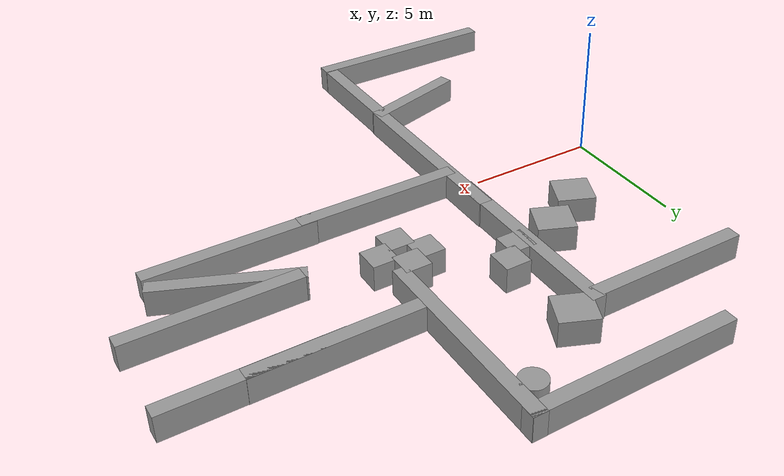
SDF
<sdf version="1.6">
 <model name="Maze01">
  <link name="link_10">
   <pose>9.80009 2.02423 9e-06 0 -0 0</pose>
   <inertial>
    <mass>1</mass>
    <inertia>
     <ixx>0.166667</ixx>
     <ixy>0</ixy>
     <ixz>0</ixz>
     <iyy>0.166667</iyy>
     <iyz>0</iyz>
     <izz>0.166667</izz>
    </inertia>
   </inertial>
   <visual name="visual">
    <geometry><box><size>1 1 1</size></box></geometry>
    <material>
     <lighting>1</lighting>
     <script><uri>file://media/materials/scripts/gazebo.material</uri><name>Gazebo/Grey</name></script>
     <ambient>0.3 0.3 0.3 1</ambient>
     <diffuse>0.7 0.7 0.7 1</diffuse>
     <specular>0.01 0.01 0.01 1</specular>
     <emissive>0 0 0 1</emissive>
    </material>
   </visual>
   <collision name="collision">
    <geometry><box><size>1 1 1</size></box></geometry>
    <surface>
     <friction>
      <ode><mu>1</mu><mu2>1</mu2><fdir1>0 0 0</fdir1><slip1>0</slip1><slip2>0</slip2></ode>
      <torsional>
       <coefficient>1</coefficient>
       <patch_radius>0</patch_radius>
       <surface_radius>0</surface_radius>
       <use_patch_radius>1</use_patch_radius>
       <ode><slip>0</slip></ode>
      </torsional>
     </friction>
     <bounce><restitution_coefficient>0</restitution_coefficient><threshold>1e+06</threshold></bounce>
     <contact>
      <collide_without_contact>0</collide_without_contact>
      <collide_without_contact_bitmask>1</collide_without_contact_bitmask>
      <collide_bitmask>1</collide_bitmask>
      <ode>
       <soft_cfm>0</soft_cfm>
       <soft_erp>0.2</soft_erp>
       <kp>1e+13</kp>
       <kd>1</kd>
       <max_vel>0.01</max_vel>
       <min_depth>0</min_depth>
      </ode>
      <bullet>
       <split_impulse>1</split_impulse>
       <split_impulse_penetration_threshold>-0.01</split_impulse_penetration_threshold>
       <soft_cfm>0</soft_cfm>
       <soft_erp>0.2</soft_erp>
       <kp>1e+13</kp>
       <kd>1</kd>
      </bullet>
     </contact>
    </surface>
   </collision>
  </link>
  <link name="link_11">
   <pose>6.31823 4.34711 9e-06 0 -0 0</pose>
   <inertial>
    <mass>1</mass>
    <inertia>
     <ixx>0.166667</ixx>
     <ixy>0</ixy>
     <ixz>0</ixz>
     <iyy>0.166667</iyy>
     <iyz>0</iyz>
     <izz>0.166667</izz>
    </inertia>
   </inertial>
   <visual name="visual">
    <geometry><box><size>1 1 1</size></box></geometry>
    <material>
     <lighting>1</lighting>
     <script><uri>file://media/materials/scripts/gazebo.material</uri><name>Gazebo/Grey</name></script>
     <ambient>0.3 0.3 0.3 1</ambient>
     <diffuse>0.7 0.7 0.7 1</diffuse>
     <specular>0.01 0.01 0.01 1</specular>
     <emissive>0 0 0 1</emissive>
    </material>
   </visual>
   <collision name="collision">
    <geometry><box><size>1 1 1</size></box></geometry>
    <surface>
     <friction>
      <ode><mu>1</mu><mu2>1</mu2><fdir1>0 0 0</fdir1><slip1>0</slip1><slip2>0</slip2></ode>
      <torsional>
       <coefficient>1</coefficient>
       <patch_radius>0</patch_radius>
       <surface_radius>0</surface_radius>
       <use_patch_radius>1</use_patch_radius>
       <ode><slip>0</slip></ode>
      </torsional>
     </friction>
     <bounce><restitution_coefficient>0</restitution_coefficient><threshold>1e+06</threshold></bounce>
     <contact>
      <collide_without_contact>0</collide_without_contact>
      <collide_without_contact_bitmask>1</collide_without_contact_bitmask>
      <collide_bitmask>1</collide_bitmask>
      <ode>
       <soft_cfm>0</soft_cfm>
       <soft_erp>0.2</soft_erp>
       <kp>1e+13</kp>
       <kd>1</kd>
       <max_vel>0.01</max_vel>
       <min_depth>0</min_depth>
      </ode>
      <bullet>
       <split_impulse>1</split_impulse>
       <split_impulse_penetration_threshold>-0.01</split_impulse_penetration_threshold>
       <soft_cfm>0</soft_cfm>
       <soft_erp>0.2</soft_erp>
       <kp>1e+13</kp>
       <kd>1</kd>
      </bullet>
     </contact>
    </surface>
   </collision>
  </link>
  <link name="link_12">
   <pose>7.00494 5.00129 9e-06 0 -0 0</pose>
   <inertial>
    <mass>1</mass>
    <inertia>
     <ixx>0.166667</ixx>
     <ixy>0</ixy>
     <ixz>0</ixz>
     <iyy>0.166667</iyy>
     <iyz>0</iyz>
     <izz>0.166667</izz>
    </inertia>
   </inertial>
   <visual name="visual">
    <geometry><box><size>1 1 1</size></box></geometry>
    <material>
     <lighting>1</lighting>
     <script><uri>file://media/materials/scripts/gazebo.material</uri><name>Gazebo/Grey</name></script>
     <ambient>0.3 0.3 0.3 1</ambient>
     <diffuse>0.7 0.7 0.7 1</diffuse>
     <specular>0.01 0.01 0.01 1</specular>
     <emissive>0 0 0 1</emissive>
    </material>
   </visual>
   <collision name="collision">
    <geometry><box><size>1 1 1</size></box></geometry>
    <surface>
     <friction>
      <ode><mu>1</mu><mu2>1</mu2><fdir1>0 0 0</fdir1><slip1>0</slip1><slip2>0</slip2></ode>
      <torsional>
       <coefficient>1</coefficient>
       <patch_radius>0</patch_radius>
       <surface_radius>0</surface_radius>
       <use_patch_radius>1</use_patch_radius>
       <ode><slip>0</slip></ode>
      </torsional>
     </friction>
     <bounce><restitution_coefficient>0</restitution_coefficient><threshold>1e+06</threshold></bounce>
     <contact>
      <collide_without_contact>0</collide_without_contact>
      <collide_without_contact_bitmask>1</collide_without_contact_bitmask>
      <collide_bitmask>1</collide_bitmask>
      <ode>
       <soft_cfm>0</soft_cfm>
       <soft_erp>0.2</soft_erp>
       <kp>1e+13</kp>
       <kd>1</kd>
       <max_vel>0.01</max_vel>
       <min_depth>0</min_depth>
      </ode>
      <bullet>
       <split_impulse>1</split_impulse>
       <split_impulse_penetration_threshold>-0.01</split_impulse_penetration_threshold>
       <soft_cfm>0</soft_cfm>
       <soft_erp>0.2</soft_erp>
       <kp>1e+13</kp>
       <kd>1</kd>
      </bullet>
     </contact>
    </surface>
   </collision>
  </link>
  <link name="link_14">
   <pose>10.7124 2.54643 9e-06 0 -0 0</pose>
   <inertial>
    <mass>1</mass>
    <inertia>
     <ixx>0.166667</ixx>
     <ixy>0</ixy>
     <ixz>0</ixz>
     <iyy>0.166667</iyy>
     <iyz>0</iyz>
     <izz>0.166667</izz>
    </inertia>
   </inertial>
   <visual name="visual">
    <geometry><box><size>1 1 1</size></box></geometry>
    <material>
     <lighting>1</lighting>
     <script><uri>file://media/materials/scripts/gazebo.material</uri><name>Gazebo/Grey</name></script>
     <ambient>0.3 0.3 0.3 1</ambient>
     <diffuse>0.7 0.7 0.7 1</diffuse>
     <specular>0.01 0.01 0.01 1</specular>
     <emissive>0 0 0 1</emissive>
    </material>
   </visual>
   <collision name="collision">
    <geometry><box><size>1 1 1</size></box></geometry>
    <surface>
     <friction>
      <ode><mu>1</mu><mu2>1</mu2><fdir1>0 0 0</fdir1><slip1>0</slip1><slip2>0</slip2></ode>
      <torsional>
       <coefficient>1</coefficient>
       <patch_radius>0</patch_radius>
       <surface_radius>0</surface_radius>
       <use_patch_radius>1</use_patch_radius>
       <ode><slip>0</slip></ode>
      </torsional>
     </friction>
     <bounce><restitution_coefficient>0</restitution_coefficient><threshold>1e+06</threshold></bounce>
     <contact>
      <collide_without_contact>0</collide_without_contact>
      <collide_without_contact_bitmask>1</collide_without_contact_bitmask>
      <collide_bitmask>1</collide_bitmask>
      <ode>
       <soft_cfm>0</soft_cfm>
       <soft_erp>0.2</soft_erp>
       <kp>1e+13</kp>
       <kd>1</kd>
       <max_vel>0.01</max_vel>
       <min_depth>0</min_depth>
      </ode>
      <bullet>
       <split_impulse>1</split_impulse>
       <split_impulse_penetration_threshold>-0.01</split_impulse_penetration_threshold>
       <soft_cfm>0</soft_cfm>
       <soft_erp>0.2</soft_erp>
       <kp>1e+13</kp>
       <kd>1</kd>
      </bullet>
     </contact>
    </surface>
   </collision>
  </link>
  <link name="link_4_clone_0_clone_clone_1_clone_0_clone">
   <pose>2.19804 -10.643 9e-06 0 -0 0</pose>
   <inertial>
    <mass>4.30693</mass>
    <inertia><ixx>0.46587</ixx><ixy>0</ixy><ixz>0</ixz><iyy>22.6991</iyy><iyz>0</iyz><izz>22.4471</izz></inertia>
   </inertial>
   <visual name="visual">
    <geometry><box><size>7.88951 0.545905 1</size></box></geometry>
    <material>
     <lighting>1</lighting>
     <script><uri>file://media/materials/scripts/gazebo.material</uri><name>Gazebo/Grey</name></script>
     <ambient>0.3 0.3 0.3 1</ambient>
     <diffuse>0.7 0.7 0.7 1</diffuse>
     <specular>0.01 0.01 0.01 1</specular>
     <emissive>0 0 0 1</emissive>
     <shader type="pixel"/>
    </material>
   </visual>
   <collision name="collision">
    <geometry><box><size>7.88951 0.545905 1</size></box></geometry>
    <surface>
     <friction>
      <ode><mu>1</mu><mu2>1</mu2><fdir1>0 0 0</fdir1><slip1>0</slip1><slip2>0</slip2></ode>
      <torsional>
       <coefficient>1</coefficient>
       <patch_radius>0</patch_radius>
       <surface_radius>0</surface_radius>
       <use_patch_radius>1</use_patch_radius>
       <ode><slip>0</slip></ode>
      </torsional>
     </friction>
     <bounce><restitution_coefficient>0</restitution_coefficient><threshold>1e+06</threshold></bounce>
     <contact>
      <collide_without_contact>0</collide_without_contact>
      <collide_without_contact_bitmask>1</collide_without_contact_bitmask>
      <collide_bitmask>1</collide_bitmask>
      <ode>
       <soft_cfm>0</soft_cfm>
       <soft_erp>0.2</soft_erp>
       <kp>1e+13</kp>
       <kd>1</kd>
       <max_vel>0.01</max_vel>
       <min_depth>0</min_depth>
      </ode>
      <bullet>
       <split_impulse>1</split_impulse>
       <split_impulse_penetration_threshold>-0.01</split_impulse_penetration_threshold>
       <soft_cfm>0</soft_cfm>
       <soft_erp>0.2</soft_erp>
       <kp>1e+13</kp>
       <kd>1</kd>
      </bullet>
     </contact>
    </surface>
   </collision>
  </link>
  <link name="link_4_clone_0_clone_clone_1_clone_0_clone_0_clone">
   <pose>6.79233 11.1081 9e-06 0 -0 0</pose>
   <inertial>
    <mass>4.30693</mass>
    <inertia><ixx>0.46587</ixx><ixy>0</ixy><ixz>0</ixz><iyy>22.6991</iyy><iyz>0</iyz><izz>22.4471</izz></inertia>
   </inertial>
   <visual name="visual">
    <geometry><box><size>7.88951 0.545905 1</size></box></geometry>
    <material>
     <lighting>1</lighting>
     <script><uri>file://media/materials/scripts/gazebo.material</uri><name>Gazebo/Grey</name></script>
     <ambient>0.3 0.3 0.3 1</ambient>
     <diffuse>0.7 0.7 0.7 1</diffuse>
     <specular>0.01 0.01 0.01 1</specular>
     <emissive>0 0 0 1</emissive>
     <shader type="pixel"/>
    </material>
   </visual>
   <collision name="collision">
    <geometry><box><size>7.88951 0.545905 1</size></box></geometry>
    <surface>
     <friction>
      <ode><mu>1</mu><mu2>1</mu2><fdir1>0 0 0</fdir1><slip1>0</slip1><slip2>0</slip2></ode>
      <torsional>
       <coefficient>1</coefficient>
       <patch_radius>0</patch_radius>
       <surface_radius>0</surface_radius>
       <use_patch_radius>1</use_patch_radius>
       <ode><slip>0</slip></ode>
      </torsional>
     </friction>
     <bounce><restitution_coefficient>0</restitution_coefficient><threshold>1e+06</threshold></bounce>
     <contact>
      <collide_without_contact>0</collide_without_contact>
      <collide_without_contact_bitmask>1</collide_without_contact_bitmask>
      <collide_bitmask>1</collide_bitmask>
      <ode>
       <soft_cfm>0</soft_cfm>
       <soft_erp>0.2</soft_erp>
       <kp>1e+13</kp>
       <kd>1</kd>
       <max_vel>0.01</max_vel>
       <min_depth>0</min_depth>
      </ode>
      <bullet>
       <split_impulse>1</split_impulse>
       <split_impulse_penetration_threshold>-0.01</split_impulse_penetration_threshold>
       <soft_cfm>0</soft_cfm>
       <soft_erp>0.2</soft_erp>
       <kp>1e+13</kp>
       <kd>1</kd>
      </bullet>
     </contact>
    </surface>
   </collision>
  </link>
  <link name="link_4_clone_0_clone_clone_1_clone_clone">
   <pose>2.76705 7.92871 9e-06 0 -0 0</pose>
   <inertial>
    <mass>3.50538</mass>
    <inertia><ixx>0.379168</ixx><ixy>0</ixy><ixz>0</ixz><iyy>12.3366</iyy><iyz>0</iyz><izz>12.1315</izz></inertia>
   </inertial>
   <visual name="visual">
    <geometry><box><size>6.42122 0.545905 1</size></box></geometry>
    <material>
     <lighting>1</lighting>
     <script><uri>file://media/materials/scripts/gazebo.material</uri><name>Gazebo/Grey</name></script>
     <ambient>0.3 0.3 0.3 1</ambient>
     <diffuse>0.7 0.7 0.7 1</diffuse>
     <specular>0.01 0.01 0.01 1</specular>
     <emissive>0 0 0 1</emissive>
     <shader type="pixel"/>
    </material>
   </visual>
   <collision name="collision">
    <geometry><box><size>6.42122 0.545905 1</size></box></geometry>
    <surface>
     <friction>
      <ode><mu>1</mu><mu2>1</mu2><fdir1>0 0 0</fdir1><slip1>0</slip1><slip2>0</slip2></ode>
      <torsional>
       <coefficient>1</coefficient>
       <patch_radius>0</patch_radius>
       <surface_radius>0</surface_radius>
       <use_patch_radius>1</use_patch_radius>
       <ode><slip>0</slip></ode>
      </torsional>
     </friction>
     <bounce><restitution_coefficient>0</restitution_coefficient><threshold>1e+06</threshold></bounce>
     <contact>
      <collide_without_contact>0</collide_without_contact>
      <collide_without_contact_bitmask>1</collide_without_contact_bitmask>
      <collide_bitmask>1</collide_bitmask>
      <ode>
       <soft_cfm>0</soft_cfm>
       <soft_erp>0.2</soft_erp>
       <kp>1e+13</kp>
       <kd>1</kd>
       <max_vel>0.01</max_vel>
       <min_depth>0</min_depth>
      </ode>
      <bullet>
       <split_impulse>1</split_impulse>
       <split_impulse_penetration_threshold>-0.01</split_impulse_penetration_threshold>
       <soft_cfm>0</soft_cfm>
       <soft_erp>0.2</soft_erp>
       <kp>1e+13</kp>
       <kd>1</kd>
      </bullet>
     </contact>
    </surface>
   </collision>
  </link>
  <link name="link_4_clone_0_clone_clone_1_clone_clone_0">
   <pose>8.96944 -0.687018 9e-06 0 -0 0</pose>
   <inertial>
    <mass>3.50538</mass>
    <inertia><ixx>0.379168</ixx><ixy>0</ixy><ixz>0</ixz><iyy>12.3366</iyy><iyz>0</iyz><izz>12.1315</izz></inertia>
   </inertial>
   <visual name="visual">
    <geometry><box><size>6.42122 0.545905 1</size></box></geometry>
    <material>
     <lighting>1</lighting>
     <script><uri>file://media/materials/scripts/gazebo.material</uri><name>Gazebo/Grey</name></script>
     <ambient>0.3 0.3 0.3 1</ambient>
     <diffuse>0.7 0.7 0.7 1</diffuse>
     <specular>0.01 0.01 0.01 1</specular>
     <emissive>0 0 0 1</emissive>
     <shader type="pixel"/>
    </material>
   </visual>
   <collision name="collision">
    <geometry><box><size>6.42122 0.545905 1</size></box></geometry>
    <surface>
     <friction>
      <ode><mu>1</mu><mu2>1</mu2><fdir1>0 0 0</fdir1><slip1>0</slip1><slip2>0</slip2></ode>
      <torsional>
       <coefficient>1</coefficient>
       <patch_radius>0</patch_radius>
       <surface_radius>0</surface_radius>
       <use_patch_radius>1</use_patch_radius>
       <ode><slip>0</slip></ode>
      </torsional>
     </friction>
     <bounce><restitution_coefficient>0</restitution_coefficient><threshold>1e+06</threshold></bounce>
     <contact>
      <collide_without_contact>0</collide_without_contact>
      <collide_without_contact_bitmask>1</collide_without_contact_bitmask>
      <collide_bitmask>1</collide_bitmask>
      <ode>
       <soft_cfm>0</soft_cfm>
       <soft_erp>0.2</soft_erp>
       <kp>1e+13</kp>
       <kd>1</kd>
       <max_vel>0.01</max_vel>
       <min_depth>0</min_depth>
      </ode>
      <bullet>
       <split_impulse>1</split_impulse>
       <split_impulse_penetration_threshold>-0.01</split_impulse_penetration_threshold>
       <soft_cfm>0</soft_cfm>
       <soft_erp>0.2</soft_erp>
       <kp>1e+13</kp>
       <kd>1</kd>
      </bullet>
     </contact>
    </surface>
   </collision>
  </link>
  <link name="link_4_clone_0_clone_clone_1_clone_clone_0_clone">
   <pose>13.7042 5.43273 9e-06 0 -0 0</pose>
   <inertial>
    <mass>3.50538</mass>
    <inertia><ixx>0.379168</ixx><ixy>0</ixy><ixz>0</ixz><iyy>12.3366</iyy><iyz>0</iyz><izz>12.1315</izz></inertia>
   </inertial>
   <visual name="visual">
    <geometry><box><size>6.42122 0.545905 1</size></box></geometry>
    <material>
     <lighting>1</lighting>
     <script><uri>file://media/materials/scripts/gazebo.material</uri><name>Gazebo/Grey</name></script>
     <ambient>0.3 0.3 0.3 1</ambient>
     <diffuse>0.7 0.7 0.7 1</diffuse>
     <specular>0.01 0.01 0.01 1</specular>
     <emissive>0 0 0 1</emissive>
     <shader type="pixel"/>
    </material>
   </visual>
   <collision name="collision">
    <geometry><box><size>6.42122 0.545905 1</size></box></geometry>
    <surface>
     <friction>
      <ode><mu>1</mu><mu2>1</mu2><fdir1>0 0 0</fdir1><slip1>0</slip1><slip2>0</slip2></ode>
      <torsional>
       <coefficient>1</coefficient>
       <patch_radius>0</patch_radius>
       <surface_radius>0</surface_radius>
       <use_patch_radius>1</use_patch_radius>
       <ode><slip>0</slip></ode>
      </torsional>
     </friction>
     <bounce><restitution_coefficient>0</restitution_coefficient><threshold>1e+06</threshold></bounce>
     <contact>
      <collide_without_contact>0</collide_without_contact>
      <collide_without_contact_bitmask>1</collide_without_contact_bitmask>
      <collide_bitmask>1</collide_bitmask>
      <ode>
       <soft_cfm>0</soft_cfm>
       <soft_erp>0.2</soft_erp>
       <kp>1e+13</kp>
       <kd>1</kd>
       <max_vel>0.01</max_vel>
       <min_depth>0</min_depth>
      </ode>
      <bullet>
       <split_impulse>1</split_impulse>
       <split_impulse_penetration_threshold>-0.01</split_impulse_penetration_threshold>
       <soft_cfm>0</soft_cfm>
       <soft_erp>0.2</soft_erp>
       <kp>1e+13</kp>
       <kd>1</kd>
      </bullet>
     </contact>
    </surface>
   </collision>
  </link>
  <link name="link_4_clone_0_clone_clone_1_clone_clone_0_clone_0">
   <pose>16.5218 2.00661 9e-06 0 -0 0</pose>
   <inertial>
    <mass>3.50538</mass>
    <inertia><ixx>0.379168</ixx><ixy>0</ixy><ixz>0</ixz><iyy>12.3366</iyy><iyz>0</iyz><izz>12.1315</izz></inertia>
   </inertial>
   <visual name="visual">
    <geometry><box><size>6.42122 0.545905 1</size></box></geometry>
    <material>
     <lighting>1</lighting>
     <script><uri>file://media/materials/scripts/gazebo.material</uri><name>Gazebo/Grey</name></script>
     <ambient>0.3 0.3 0.3 1</ambient>
     <diffuse>0.7 0.7 0.7 1</diffuse>
     <specular>0.01 0.01 0.01 1</specular>
     <emissive>0 0 0 1</emissive>
     <shader type="pixel"/>
    </material>
   </visual>
   <collision name="collision">
    <geometry><box><size>6.42122 0.545905 1</size></box></geometry>
    <surface>
     <friction>
      <ode><mu>1</mu><mu2>1</mu2><fdir1>0 0 0</fdir1><slip1>0</slip1><slip2>0</slip2></ode>
      <torsional>
       <coefficient>1</coefficient>
       <patch_radius>0</patch_radius>
       <surface_radius>0</surface_radius>
       <use_patch_radius>1</use_patch_radius>
       <ode><slip>0</slip></ode>
      </torsional>
     </friction>
     <bounce><restitution_coefficient>0</restitution_coefficient><threshold>1e+06</threshold></bounce>
     <contact>
      <collide_without_contact>0</collide_without_contact>
      <collide_without_contact_bitmask>1</collide_without_contact_bitmask>
      <collide_bitmask>1</collide_bitmask>
      <ode>
       <soft_cfm>0</soft_cfm>
       <soft_erp>0.2</soft_erp>
       <kp>1e+13</kp>
       <kd>1</kd>
       <max_vel>0.01</max_vel>
       <min_depth>0</min_depth>
      </ode>
      <bullet>
       <split_impulse>1</split_impulse>
       <split_impulse_penetration_threshold>-0.01</split_impulse_penetration_threshold>
       <soft_cfm>0</soft_cfm>
       <soft_erp>0.2</soft_erp>
       <kp>1e+13</kp>
       <kd>1</kd>
      </bullet>
     </contact>
    </surface>
   </collision>
  </link>
  <link name="link_4_clone_0_clone_clone_1_clone_clone_0_clone_1">
   <pose>16.5551 5.42013 9e-06 0 -0 0</pose>
   <inertial>
    <mass>3.50538</mass>
    <inertia><ixx>0.379168</ixx><ixy>0</ixy><ixz>0</ixz><iyy>12.3366</iyy><iyz>0</iyz><izz>12.1315</izz></inertia>
   </inertial>
   <visual name="visual">
    <geometry><box><size>6.42122 0.545905 1</size></box></geometry>
    <material>
     <lighting>1</lighting>
     <script><uri>file://media/materials/scripts/gazebo.material</uri><name>Gazebo/Grey</name></script>
     <ambient>0.3 0.3 0.3 1</ambient>
     <diffuse>0.7 0.7 0.7 1</diffuse>
     <specular>0.01 0.01 0.01 1</specular>
     <emissive>0 0 0 1</emissive>
     <shader type="pixel"/>
    </material>
   </visual>
   <collision name="collision">
    <geometry><box><size>6.42122 0.545905 1</size></box></geometry>
    <surface>
     <friction>
      <ode><mu>1</mu><mu2>1</mu2><fdir1>0 0 0</fdir1><slip1>0</slip1><slip2>0</slip2></ode>
      <torsional>
       <coefficient>1</coefficient>
       <patch_radius>0</patch_radius>
       <surface_radius>0</surface_radius>
       <use_patch_radius>1</use_patch_radius>
       <ode><slip>0</slip></ode>
      </torsional>
     </friction>
     <bounce><restitution_coefficient>0</restitution_coefficient><threshold>1e+06</threshold></bounce>
     <contact>
      <collide_without_contact>0</collide_without_contact>
      <collide_without_contact_bitmask>1</collide_without_contact_bitmask>
      <collide_bitmask>1</collide_bitmask>
      <ode>
       <soft_cfm>0</soft_cfm>
       <soft_erp>0.2</soft_erp>
       <kp>1e+13</kp>
       <kd>1</kd>
       <max_vel>0.01</max_vel>
       <min_depth>0</min_depth>
      </ode>
      <bullet>
       <split_impulse>1</split_impulse>
       <split_impulse_penetration_threshold>-0.01</split_impulse_penetration_threshold>
       <soft_cfm>0</soft_cfm>
       <soft_erp>0.2</soft_erp>
       <kp>1e+13</kp>
       <kd>1</kd>
      </bullet>
     </contact>
    </surface>
   </collision>
  </link>
  <link name="link_4_clone_0_clone_clone_1_clone_clone_1">
   <pose>14.7931 -0.66198 9e-06 0 -0 0</pose>
   <inertial>
    <mass>3.50538</mass>
    <inertia><ixx>0.379168</ixx><ixy>0</ixy><ixz>0</ixz><iyy>12.3366</iyy><iyz>0</iyz><izz>12.1315</izz></inertia>
   </inertial>
   <visual name="visual">
    <geometry><box><size>6.42122 0.545905 1</size></box></geometry>
    <material>
     <lighting>1</lighting>
     <script><uri>file://media/materials/scripts/gazebo.material</uri><name>Gazebo/Grey</name></script>
     <ambient>0.3 0.3 0.3 1</ambient>
     <diffuse>0.7 0.7 0.7 1</diffuse>
     <specular>0.01 0.01 0.01 1</specular>
     <emissive>0 0 0 1</emissive>
     <shader type="pixel"/>
    </material>
   </visual>
   <collision name="collision">
    <geometry><box><size>6.42122 0.545905 1</size></box></geometry>
    <surface>
     <friction>
      <ode><mu>1</mu><mu2>1</mu2><fdir1>0 0 0</fdir1><slip1>0</slip1><slip2>0</slip2></ode>
      <torsional>
       <coefficient>1</coefficient>
       <patch_radius>0</patch_radius>
       <surface_radius>0</surface_radius>
       <use_patch_radius>1</use_patch_radius>
       <ode><slip>0</slip></ode>
      </torsional>
     </friction>
     <bounce><restitution_coefficient>0</restitution_coefficient><threshold>1e+06</threshold></bounce>
     <contact>
      <collide_without_contact>0</collide_without_contact>
      <collide_without_contact_bitmask>1</collide_without_contact_bitmask>
      <collide_bitmask>1</collide_bitmask>
      <ode>
       <soft_cfm>0</soft_cfm>
       <soft_erp>0.2</soft_erp>
       <kp>1e+13</kp>
       <kd>1</kd>
       <max_vel>0.01</max_vel>
       <min_depth>0</min_depth>
      </ode>
      <bullet>
       <split_impulse>1</split_impulse>
       <split_impulse_penetration_threshold>-0.01</split_impulse_penetration_threshold>
       <soft_cfm>0</soft_cfm>
       <soft_erp>0.2</soft_erp>
       <kp>1e+13</kp>
       <kd>1</kd>
      </bullet>
     </contact>
    </surface>
   </collision>
  </link>
  <link name="link_4_clone_1_clone_1_clone_0_clone">
   <pose>5.88859 -2.1218 9e-06 0 0 -1.56693</pose>
   <inertial>
    <mass>4.30693</mass>
    <inertia><ixx>0.46587</ixx><ixy>0</ixy><ixz>0</ixz><iyy>22.6991</iyy><iyz>0</iyz><izz>22.4471</izz></inertia>
   </inertial>
   <visual name="visual">
    <geometry><box><size>7.88951 0.545905 1</size></box></geometry>
    <material>
     <lighting>1</lighting>
     <script><uri>file://media/materials/scripts/gazebo.material</uri><name>Gazebo/Grey</name></script>
     <ambient>0.3 0.3 0.3 1</ambient>
     <diffuse>0.7 0.7 0.7 1</diffuse>
     <specular>0.01 0.01 0.01 1</specular>
     <emissive>0 0 0 1</emissive>
     <shader type="pixel"/>
    </material>
   </visual>
   <collision name="collision">
    <geometry><box><size>7.88951 0.545905 1</size></box></geometry>
    <surface>
     <friction>
      <ode><mu>1</mu><mu2>1</mu2><fdir1>0 0 0</fdir1><slip1>0</slip1><slip2>0</slip2></ode>
      <torsional>
       <coefficient>1</coefficient>
       <patch_radius>0</patch_radius>
       <surface_radius>0</surface_radius>
       <use_patch_radius>1</use_patch_radius>
       <ode><slip>0</slip></ode>
      </torsional>
     </friction>
     <bounce><restitution_coefficient>0</restitution_coefficient><threshold>1e+06</threshold></bounce>
     <contact>
      <collide_without_contact>0</collide_without_contact>
      <collide_without_contact_bitmask>1</collide_without_contact_bitmask>
      <collide_bitmask>1</collide_bitmask>
      <ode>
       <soft_cfm>0</soft_cfm>
       <soft_erp>0.2</soft_erp>
       <kp>1e+13</kp>
       <kd>1</kd>
       <max_vel>0.01</max_vel>
       <min_depth>0</min_depth>
      </ode>
      <bullet>
       <split_impulse>1</split_impulse>
       <split_impulse_penetration_threshold>-0.01</split_impulse_penetration_threshold>
       <soft_cfm>0</soft_cfm>
       <soft_erp>0.2</soft_erp>
       <kp>1e+13</kp>
       <kd>1</kd>
      </bullet>
     </contact>
    </surface>
   </collision>
  </link>
  <link name="link_4_clone_1_clone_1_clone_0_clone_clone">
   <pose>10.4715 7.44804 9e-06 0 0 -1.56693</pose>
   <inertial>
    <mass>4.30693</mass>
    <inertia><ixx>0.46587</ixx><ixy>0</ixy><ixz>0</ixz><iyy>22.6991</iyy><iyz>0</iyz><izz>22.4471</izz></inertia>
   </inertial>
   <visual name="visual">
    <geometry><box><size>7.88951 0.545905 1</size></box></geometry>
    <material>
     <lighting>1</lighting>
     <script><uri>file://media/materials/scripts/gazebo.material</uri><name>Gazebo/Grey</name></script>
     <ambient>0.3 0.3 0.3 1</ambient>
     <diffuse>0.7 0.7 0.7 1</diffuse>
     <specular>0.01 0.01 0.01 1</specular>
     <emissive>0 0 0 1</emissive>
     <shader type="pixel"/>
    </material>
   </visual>
   <collision name="collision">
    <geometry><box><size>7.88951 0.545905 1</size></box></geometry>
    <surface>
     <friction>
      <ode><mu>1</mu><mu2>1</mu2><fdir1>0 0 0</fdir1><slip1>0</slip1><slip2>0</slip2></ode>
      <torsional>
       <coefficient>1</coefficient>
       <patch_radius>0</patch_radius>
       <surface_radius>0</surface_radius>
       <use_patch_radius>1</use_patch_radius>
       <ode><slip>0</slip></ode>
      </torsional>
     </friction>
     <bounce><restitution_coefficient>0</restitution_coefficient><threshold>1e+06</threshold></bounce>
     <contact>
      <collide_without_contact>0</collide_without_contact>
      <collide_without_contact_bitmask>1</collide_without_contact_bitmask>
      <collide_bitmask>1</collide_bitmask>
      <ode>
       <soft_cfm>0</soft_cfm>
       <soft_erp>0.2</soft_erp>
       <kp>1e+13</kp>
       <kd>1</kd>
       <max_vel>0.01</max_vel>
       <min_depth>0</min_depth>
      </ode>
      <bullet>
       <split_impulse>1</split_impulse>
       <split_impulse_penetration_threshold>-0.01</split_impulse_penetration_threshold>
       <soft_cfm>0</soft_cfm>
       <soft_erp>0.2</soft_erp>
       <kp>1e+13</kp>
       <kd>1</kd>
      </bullet>
     </contact>
    </surface>
   </collision>
  </link>
  <link name="link_4_clone_1_clone_1_clone_1">
   <pose>5.82858 4.32024 9e-06 0 0 -1.56693</pose>
   <inertial>
    <mass>4.30693</mass>
    <inertia><ixx>0.46587</ixx><ixy>0</ixy><ixz>0</ixz><iyy>22.6991</iyy><iyz>0</iyz><izz>22.4471</izz></inertia>
   </inertial>
   <visual name="visual">
    <geometry><box><size>7.88951 0.545905 1</size></box></geometry>
    <material>
     <lighting>1</lighting>
     <script><uri>file://media/materials/scripts/gazebo.material</uri><name>Gazebo/Grey</name></script>
     <ambient>0.3 0.3 0.3 1</ambient>
     <diffuse>0.7 0.7 0.7 1</diffuse>
     <specular>0.01 0.01 0.01 1</specular>
     <emissive>0 0 0 1</emissive>
     <shader type="pixel"/>
    </material>
   </visual>
   <collision name="collision">
    <geometry><box><size>7.88951 0.545905 1</size></box></geometry>
    <surface>
     <friction>
      <ode><mu>1</mu><mu2>1</mu2><fdir1>0 0 0</fdir1><slip1>0</slip1><slip2>0</slip2></ode>
      <torsional>
       <coefficient>1</coefficient>
       <patch_radius>0</patch_radius>
       <surface_radius>0</surface_radius>
       <use_patch_radius>1</use_patch_radius>
       <ode><slip>0</slip></ode>
      </torsional>
     </friction>
     <bounce><restitution_coefficient>0</restitution_coefficient><threshold>1e+06</threshold></bounce>
     <contact>
      <collide_without_contact>0</collide_without_contact>
      <collide_without_contact_bitmask>1</collide_without_contact_bitmask>
      <collide_bitmask>1</collide_bitmask>
      <ode>
       <soft_cfm>0</soft_cfm>
       <soft_erp>0.2</soft_erp>
       <kp>1e+13</kp>
       <kd>1</kd>
       <max_vel>0.01</max_vel>
       <min_depth>0</min_depth>
      </ode>
      <bullet>
       <split_impulse>1</split_impulse>
       <split_impulse_penetration_threshold>-0.01</split_impulse_penetration_threshold>
       <soft_cfm>0</soft_cfm>
       <soft_erp>0.2</soft_erp>
       <kp>1e+13</kp>
       <kd>1</kd>
      </bullet>
     </contact>
    </surface>
   </collision>
  </link>
  <link name="link_4_clone_1_clone_1_clone_clone_0_clone">
   <pose>4.03057 -6.47031 9e-06 0 -0 0.2833</pose>
   <inertial>
    <mass>2.3361</mass>
    <inertia><ixx>0.25269</ixx><ixy>0</ixy><ixz>0</ixz><iyy>3.75965</iyy><iyz>0</iyz><izz>3.62299</izz></inertia>
   </inertial>
   <visual name="visual">
    <geometry><box><size>4.27931 0.545905 1</size></box></geometry>
    <material>
     <lighting>1</lighting>
     <script><uri>file://media/materials/scripts/gazebo.material</uri><name>Gazebo/Grey</name></script>
     <ambient>0.3 0.3 0.3 1</ambient>
     <diffuse>0.7 0.7 0.7 1</diffuse>
     <specular>0.01 0.01 0.01 1</specular>
     <emissive>0 0 0 1</emissive>
     <shader type="pixel"/>
    </material>
   </visual>
   <collision name="collision">
    <geometry><box><size>4.27931 0.545905 1</size></box></geometry>
    <surface>
     <friction>
      <ode><mu>1</mu><mu2>1</mu2><fdir1>0 0 0</fdir1><slip1>0</slip1><slip2>0</slip2></ode>
      <torsional>
       <coefficient>1</coefficient>
       <patch_radius>0</patch_radius>
       <surface_radius>0</surface_radius>
       <use_patch_radius>1</use_patch_radius>
       <ode><slip>0</slip></ode>
      </torsional>
     </friction>
     <bounce><restitution_coefficient>0</restitution_coefficient><threshold>1e+06</threshold></bounce>
     <contact>
      <collide_without_contact>0</collide_without_contact>
      <collide_without_contact_bitmask>1</collide_without_contact_bitmask>
      <collide_bitmask>1</collide_bitmask>
      <ode>
       <soft_cfm>0</soft_cfm>
       <soft_erp>0.2</soft_erp>
       <kp>1e+13</kp>
       <kd>1</kd>
       <max_vel>0.01</max_vel>
       <min_depth>0</min_depth>
      </ode>
      <bullet>
       <split_impulse>1</split_impulse>
       <split_impulse_penetration_threshold>-0.01</split_impulse_penetration_threshold>
       <soft_cfm>0</soft_cfm>
       <soft_erp>0.2</soft_erp>
       <kp>1e+13</kp>
       <kd>1</kd>
      </bullet>
     </contact>
    </surface>
   </collision>
  </link>
  <link name="link_4_clone_1_clone_1_clone_clone_0_clone_1">
   <pose>5.87005 -8.18932 9e-06 0 0 -1.56693</pose>
   <inertial>
    <mass>2.3361</mass>
    <inertia><ixx>0.25269</ixx><ixy>0</ixy><ixz>0</ixz><iyy>3.75965</iyy><iyz>0</iyz><izz>3.62299</izz></inertia>
   </inertial>
   <visual name="visual">
    <geometry><box><size>4.27931 0.545905 1</size></box></geometry>
    <material>
     <lighting>1</lighting>
     <script><uri>file://media/materials/scripts/gazebo.material</uri><name>Gazebo/Grey</name></script>
     <ambient>0.3 0.3 0.3 1</ambient>
     <diffuse>0.7 0.7 0.7 1</diffuse>
     <specular>0.01 0.01 0.01 1</specular>
     <emissive>0 0 0 1</emissive>
     <shader type="pixel"/>
    </material>
   </visual>
   <collision name="collision">
    <geometry><box><size>4.27931 0.545905 1</size></box></geometry>
    <surface>
     <friction>
      <ode><mu>1</mu><mu2>1</mu2><fdir1>0 0 0</fdir1><slip1>0</slip1><slip2>0</slip2></ode>
      <torsional>
       <coefficient>1</coefficient>
       <patch_radius>0</patch_radius>
       <surface_radius>0</surface_radius>
       <use_patch_radius>1</use_patch_radius>
       <ode><slip>0</slip></ode>
      </torsional>
     </friction>
     <bounce><restitution_coefficient>0</restitution_coefficient><threshold>1e+06</threshold></bounce>
     <contact>
      <collide_without_contact>0</collide_without_contact>
      <collide_without_contact_bitmask>1</collide_without_contact_bitmask>
      <collide_bitmask>1</collide_bitmask>
      <ode>
       <soft_cfm>0</soft_cfm>
       <soft_erp>0.2</soft_erp>
       <kp>1e+13</kp>
       <kd>1</kd>
       <max_vel>0.01</max_vel>
       <min_depth>0</min_depth>
      </ode>
      <bullet>
       <split_impulse>1</split_impulse>
       <split_impulse_penetration_threshold>-0.01</split_impulse_penetration_threshold>
       <soft_cfm>0</soft_cfm>
       <soft_erp>0.2</soft_erp>
       <kp>1e+13</kp>
       <kd>1</kd>
      </bullet>
     </contact>
    </surface>
   </collision>
  </link>
  <link name="link_4_clone_1_clone_1_clone_clone_0_clone_clone_clone">
   <pose>15.5955 0.999523 -0.000417 0 0 -0.405308</pose>
   <inertial>
    <mass>2.91384</mass>
    <inertia><ixx>0.315184</ixx><ixy>0</ixy><ixz>0</ixz><iyy>7.16085</iyy><iyz>0</iyz><izz>6.99039</izz></inertia>
   </inertial>
   <visual name="visual">
    <geometry><box><size>5.33763 0.545905 1</size></box></geometry>
    <material>
     <lighting>1</lighting>
     <script><uri>file://media/materials/scripts/gazebo.material</uri><name>Gazebo/Grey</name></script>
     <ambient>0.3 0.3 0.3 1</ambient>
     <diffuse>0.7 0.7 0.7 1</diffuse>
     <specular>0.01 0.01 0.01 1</specular>
     <emissive>0 0 0 1</emissive>
     <shader type="pixel"/>
    </material>
   </visual>
   <collision name="collision">
    <geometry><box><size>5.33763 0.545905 1</size></box></geometry>
    <surface>
     <friction>
      <ode><mu>1</mu><mu2>1</mu2><fdir1>0 0 0</fdir1><slip1>0</slip1><slip2>0</slip2></ode>
      <torsional>
       <coefficient>1</coefficient>
       <patch_radius>0</patch_radius>
       <surface_radius>0</surface_radius>
       <use_patch_radius>1</use_patch_radius>
       <ode><slip>0</slip></ode>
      </torsional>
     </friction>
     <bounce><restitution_coefficient>0</restitution_coefficient><threshold>1e+06</threshold></bounce>
     <contact>
      <collide_without_contact>0</collide_without_contact>
      <collide_without_contact_bitmask>1</collide_without_contact_bitmask>
      <collide_bitmask>1</collide_bitmask>
      <ode>
       <soft_cfm>0</soft_cfm>
       <soft_erp>0.2</soft_erp>
       <kp>1e+13</kp>
       <kd>1</kd>
       <max_vel>0.01</max_vel>
       <min_depth>0</min_depth>
      </ode>
      <bullet>
       <split_impulse>1</split_impulse>
       <split_impulse_penetration_threshold>-0.01</split_impulse_penetration_threshold>
       <soft_cfm>0</soft_cfm>
       <soft_erp>0.2</soft_erp>
       <kp>1e+13</kp>
       <kd>1</kd>
      </bullet>
     </contact>
    </surface>
   </collision>
  </link>
  <link name="link_6_clone_clone">
   <pose>2.67865 2.83156 9e-06 0 0 -0.406538</pose>
   <inertial>
    <mass>1.94722</mass>
    <inertia><ixx>0.463684</ixx><ixy>0</ixy><ixz>0</ixz><iyy>0.4935</iyy><iyz>0</iyz><izz>0.632648</izz></inertia>
   </inertial>
   <visual name="visual">
    <geometry><box><size>1.42873 1.36291 1</size></box></geometry>
    <material>
     <lighting>1</lighting>
     <script><uri>file://media/materials/scripts/gazebo.material</uri><name>Gazebo/Grey</name></script>
     <ambient>0.3 0.3 0.3 1</ambient>
     <diffuse>0.7 0.7 0.7 1</diffuse>
     <specular>0.01 0.01 0.01 1</specular>
     <emissive>0 0 0 1</emissive>
     <shader type="pixel"/>
    </material>
   </visual>
   <collision name="collision">
    <geometry><box><size>1.42873 1.36291 1</size></box></geometry>
    <surface>
     <friction>
      <ode><mu>1</mu><mu2>1</mu2><fdir1>0 0 0</fdir1><slip1>0</slip1><slip2>0</slip2></ode>
      <torsional>
       <coefficient>1</coefficient>
       <patch_radius>0</patch_radius>
       <surface_radius>0</surface_radius>
       <use_patch_radius>1</use_patch_radius>
       <ode><slip>0</slip></ode>
      </torsional>
     </friction>
     <bounce><restitution_coefficient>0</restitution_coefficient><threshold>1e+06</threshold></bounce>
     <contact>
      <collide_without_contact>0</collide_without_contact>
      <collide_without_contact_bitmask>1</collide_without_contact_bitmask>
      <collide_bitmask>1</collide_bitmask>
      <ode>
       <soft_cfm>0</soft_cfm>
       <soft_erp>0.2</soft_erp>
       <kp>1e+13</kp>
       <kd>1</kd>
       <max_vel>0.01</max_vel>
       <min_depth>0</min_depth>
      </ode>
      <bullet>
       <split_impulse>1</split_impulse>
       <split_impulse_penetration_threshold>-0.01</split_impulse_penetration_threshold>
       <soft_cfm>0</soft_cfm>
       <soft_erp>0.2</soft_erp>
       <kp>1e+13</kp>
       <kd>1</kd>
      </bullet>
     </contact>
    </surface>
   </collision>
  </link>
  <link name="link_6_clone_clone_0">
   <pose>4.37408 3.90111 9e-06 0 0 -0.406538</pose>
   <inertial>
    <mass>1.94722</mass>
    <inertia><ixx>0.463684</ixx><ixy>0</ixy><ixz>0</ixz><iyy>0.4935</iyy><iyz>0</iyz><izz>0.632648</izz></inertia>
   </inertial>
   <visual name="visual">
    <geometry><box><size>1.42873 1.36291 1</size></box></geometry>
    <material>
     <lighting>1</lighting>
     <script><uri>file://media/materials/scripts/gazebo.material</uri><name>Gazebo/Grey</name></script>
     <ambient>0.3 0.3 0.3 1</ambient>
     <diffuse>0.7 0.7 0.7 1</diffuse>
     <specular>0.01 0.01 0.01 1</specular>
     <emissive>0 0 0 1</emissive>
     <shader type="pixel"/>
    </material>
   </visual>
   <collision name="collision">
    <geometry><box><size>1.42873 1.36291 1</size></box></geometry>
    <surface>
     <friction>
      <ode><mu>1</mu><mu2>1</mu2><fdir1>0 0 0</fdir1><slip1>0</slip1><slip2>0</slip2></ode>
      <torsional>
       <coefficient>1</coefficient>
       <patch_radius>0</patch_radius>
       <surface_radius>0</surface_radius>
       <use_patch_radius>1</use_patch_radius>
       <ode><slip>0</slip></ode>
      </torsional>
     </friction>
     <bounce><restitution_coefficient>0</restitution_coefficient><threshold>1e+06</threshold></bounce>
     <contact>
      <collide_without_contact>0</collide_without_contact>
      <collide_without_contact_bitmask>1</collide_without_contact_bitmask>
      <collide_bitmask>1</collide_bitmask>
      <ode>
       <soft_cfm>0</soft_cfm>
       <soft_erp>0.2</soft_erp>
       <kp>1e+13</kp>
       <kd>1</kd>
       <max_vel>0.01</max_vel>
       <min_depth>0</min_depth>
      </ode>
      <bullet>
       <split_impulse>1</split_impulse>
       <split_impulse_penetration_threshold>-0.01</split_impulse_penetration_threshold>
       <soft_cfm>0</soft_cfm>
       <soft_erp>0.2</soft_erp>
       <kp>1e+13</kp>
       <kd>1</kd>
      </bullet>
     </contact>
    </surface>
   </collision>
  </link>
  <link name="link_6_clone_clone_0_clone_clone">
   <pose>6.7785 8.2182 9e-06 0 0 -0.406538</pose>
   <inertial>
    <mass>1.94722</mass>
    <inertia><ixx>0.463684</ixx><ixy>0</ixy><ixz>0</ixz><iyy>0.4935</iyy><iyz>0</iyz><izz>0.632648</izz></inertia>
   </inertial>
   <visual name="visual">
    <geometry><box><size>1.42873 1.36291 1</size></box></geometry>
    <material>
     <lighting>1</lighting>
     <script><uri>file://media/materials/scripts/gazebo.material</uri><name>Gazebo/Grey</name></script>
     <ambient>0.3 0.3 0.3 1</ambient>
     <diffuse>0.7 0.7 0.7 1</diffuse>
     <specular>0.01 0.01 0.01 1</specular>
     <emissive>0 0 0 1</emissive>
     <shader type="pixel"/>
    </material>
   </visual>
   <collision name="collision">
    <geometry><box><size>1.42873 1.36291 1</size></box></geometry>
    <surface>
     <friction>
      <ode><mu>1</mu><mu2>1</mu2><fdir1>0 0 0</fdir1><slip1>0</slip1><slip2>0</slip2></ode>
      <torsional>
       <coefficient>1</coefficient>
       <patch_radius>0</patch_radius>
       <surface_radius>0</surface_radius>
       <use_patch_radius>1</use_patch_radius>
       <ode><slip>0</slip></ode>
      </torsional>
     </friction>
     <bounce><restitution_coefficient>0</restitution_coefficient><threshold>1e+06</threshold></bounce>
     <contact>
      <collide_without_contact>0</collide_without_contact>
      <collide_without_contact_bitmask>1</collide_without_contact_bitmask>
      <collide_bitmask>1</collide_bitmask>
      <ode>
       <soft_cfm>0</soft_cfm>
       <soft_erp>0.2</soft_erp>
       <kp>1e+13</kp>
       <kd>1</kd>
       <max_vel>0.01</max_vel>
       <min_depth>0</min_depth>
      </ode>
      <bullet>
       <split_impulse>1</split_impulse>
       <split_impulse_penetration_threshold>-0.01</split_impulse_penetration_threshold>
       <soft_cfm>0</soft_cfm>
       <soft_erp>0.2</soft_erp>
       <kp>1e+13</kp>
       <kd>1</kd>
      </bullet>
     </contact>
    </surface>
   </collision>
  </link>
  <link name="link_7">
   <pose>9.80695 10.1149 9e-06 0 -0 0</pose>
   <inertial>
    <mass>1</mass>
    <inertia><ixx>0.145833</ixx><ixy>0</ixy><ixz>0</ixz><iyy>0.145833</iyy><iyz>0</iyz><izz>0.125</izz></inertia>
   </inertial>
   <visual name="visual">
    <geometry><cylinder><radius>0.5</radius><length>1</length></cylinder></geometry>
    <material>
     <lighting>1</lighting>
     <script><uri>file://media/materials/scripts/gazebo.material</uri><name>Gazebo/Grey</name></script>
     <ambient>0.3 0.3 0.3 1</ambient>
     <diffuse>0.7 0.7 0.7 1</diffuse>
     <specular>0.01 0.01 0.01 1</specular>
     <emissive>0 0 0 1</emissive>
    </material>
   </visual>
   <collision name="collision">
    <geometry><cylinder><radius>0.5</radius><length>1</length></cylinder></geometry>
    <surface>
     <friction>
      <ode><mu>1</mu><mu2>1</mu2><fdir1>0 0 0</fdir1><slip1>0</slip1><slip2>0</slip2></ode>
      <torsional>
       <coefficient>1</coefficient>
       <patch_radius>0</patch_radius>
       <surface_radius>0</surface_radius>
       <use_patch_radius>1</use_patch_radius>
       <ode><slip>0</slip></ode>
      </torsional>
     </friction>
     <bounce><restitution_coefficient>0</restitution_coefficient><threshold>1e+06</threshold></bounce>
     <contact>
      <collide_without_contact>0</collide_without_contact>
      <collide_without_contact_bitmask>1</collide_without_contact_bitmask>
      <collide_bitmask>1</collide_bitmask>
      <ode>
       <soft_cfm>0</soft_cfm>
       <soft_erp>0.2</soft_erp>
       <kp>1e+13</kp>
       <kd>1</kd>
       <max_vel>0.01</max_vel>
       <min_depth>0</min_depth>
      </ode>
      <bullet>
       <split_impulse>1</split_impulse>
       <split_impulse_penetration_threshold>-0.01</split_impulse_penetration_threshold>
       <soft_cfm>0</soft_cfm>
       <soft_erp>0.2</soft_erp>
       <kp>1e+13</kp>
       <kd>1</kd>
      </bullet>
     </contact>
    </surface>
   </collision>
  </link>
  <link name="link_8">
   <pose>9.90915 3.36462 9e-06 0 -0 0</pose>
   <inertial>
    <mass>1</mass>
    <inertia>
     <ixx>0.166667</ixx>
     <ixy>0</ixy>
     <ixz>0</ixz>
     <iyy>0.166667</iyy>
     <iyz>0</iyz>
     <izz>0.166667</izz>
    </inertia>
   </inertial>
   <visual name="visual">
    <geometry><box><size>1 1 1</size></box></geometry>
    <material>
     <lighting>1</lighting>
     <script><uri>file://media/materials/scripts/gazebo.material</uri><name>Gazebo/Grey</name></script>
     <ambient>0.3 0.3 0.3 1</ambient>
     <diffuse>0.7 0.7 0.7 1</diffuse>
     <specular>0.01 0.01 0.01 1</specular>
     <emissive>0 0 0 1</emissive>
    </material>
   </visual>
   <collision name="collision">
    <geometry><box><size>1 1 1</size></box></geometry>
    <surface>
     <friction>
      <ode><mu>1</mu><mu2>1</mu2><fdir1>0 0 0</fdir1><slip1>0</slip1><slip2>0</slip2></ode>
      <torsional>
       <coefficient>1</coefficient>
       <patch_radius>0</patch_radius>
       <surface_radius>0</surface_radius>
       <use_patch_radius>1</use_patch_radius>
       <ode><slip>0</slip></ode>
      </torsional>
     </friction>
     <bounce><restitution_coefficient>0</restitution_coefficient><threshold>1e+06</threshold></bounce>
     <contact>
      <collide_without_contact>0</collide_without_contact>
      <collide_without_contact_bitmask>1</collide_without_contact_bitmask>
      <collide_bitmask>1</collide_bitmask>
      <ode>
       <soft_cfm>0</soft_cfm>
       <soft_erp>0.2</soft_erp>
       <kp>1e+13</kp>
       <kd>1</kd>
       <max_vel>0.01</max_vel>
       <min_depth>0</min_depth>
      </ode>
      <bullet>
       <split_impulse>1</split_impulse>
       <split_impulse_penetration_threshold>-0.01</split_impulse_penetration_threshold>
       <soft_cfm>0</soft_cfm>
       <soft_erp>0.2</soft_erp>
       <kp>1e+13</kp>
       <kd>1</kd>
      </bullet>
     </contact>
    </surface>
   </collision>
  </link>
  <link name="link_9">
   <pose>9.11198 2.92169 9e-06 0 -0 0</pose>
   <inertial>
    <mass>1</mass>
    <inertia>
     <ixx>0.166667</ixx>
     <ixy>0</ixy>
     <ixz>0</ixz>
     <iyy>0.166667</iyy>
     <iyz>0</iyz>
     <izz>0.166667</izz>
    </inertia>
   </inertial>
   <visual name="visual">
    <geometry><box><size>1 1 1</size></box></geometry>
    <material>
     <lighting>1</lighting>
     <script><uri>file://media/materials/scripts/gazebo.material</uri><name>Gazebo/Grey</name></script>
     <ambient>0.3 0.3 0.3 1</ambient>
     <diffuse>0.7 0.7 0.7 1</diffuse>
     <specular>0.01 0.01 0.01 1</specular>
     <emissive>0 0 0 1</emissive>
    </material>
   </visual>
   <collision name="collision">
    <geometry><box><size>1 1 1</size></box></geometry>
    <surface>
     <friction>
      <ode><mu>1</mu><mu2>1</mu2><fdir1>0 0 0</fdir1><slip1>0</slip1><slip2>0</slip2></ode>
      <torsional>
       <coefficient>1</coefficient>
       <patch_radius>0</patch_radius>
       <surface_radius>0</surface_radius>
       <use_patch_radius>1</use_patch_radius>
       <ode><slip>0</slip></ode>
      </torsional>
     </friction>
     <bounce><restitution_coefficient>0</restitution_coefficient><threshold>1e+06</threshold></bounce>
     <contact>
      <collide_without_contact>0</collide_without_contact>
      <collide_without_contact_bitmask>1</collide_without_contact_bitmask>
      <collide_bitmask>1</collide_bitmask>
      <ode>
       <soft_cfm>0</soft_cfm>
       <soft_erp>0.2</soft_erp>
       <kp>1e+13</kp>
       <kd>1</kd>
       <max_vel>0.01</max_vel>
       <min_depth>0</min_depth>
      </ode>
      <bullet>
       <split_impulse>1</split_impulse>
       <split_impulse_penetration_threshold>-0.01</split_impulse_penetration_threshold>
       <soft_cfm>0</soft_cfm>
       <soft_erp>0.2</soft_erp>
       <kp>1e+13</kp>
       <kd>1</kd>
      </bullet>
     </contact>
    </surface>
   </collision>
  </link>
  <static>0</static>
 </model>
</sdf>
